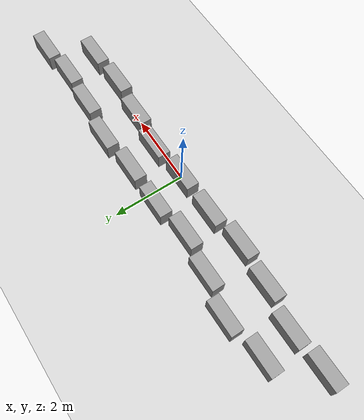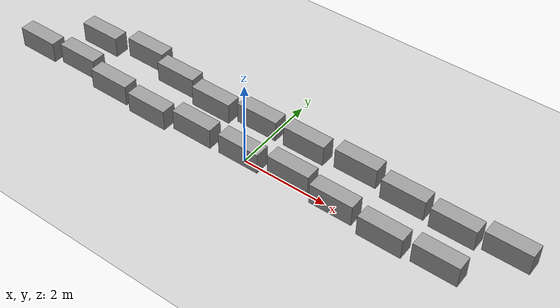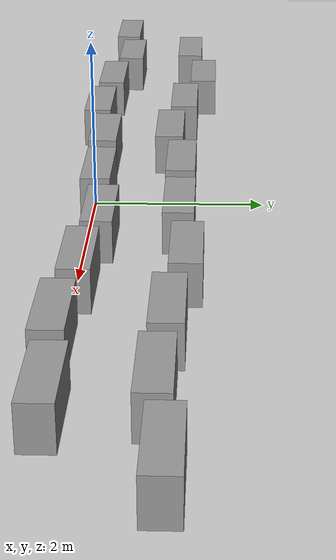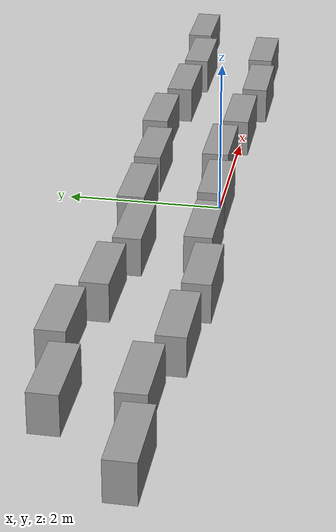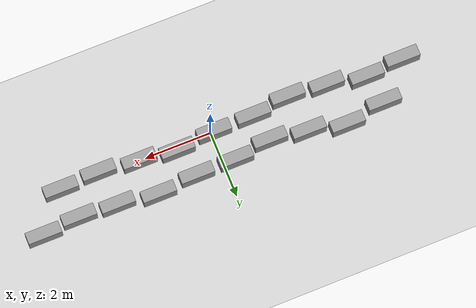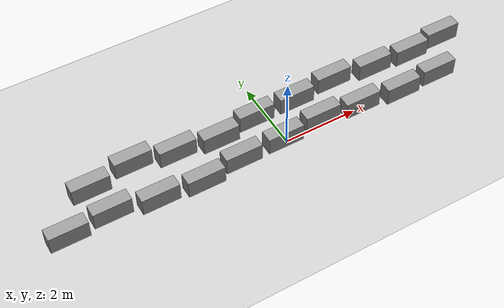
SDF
<sdf version="1.7">
 <world name="default">
  <light name="sun" type="directional">
   <pose>0 0 10 0 -0 0</pose>
   <diffuse>0.8 0.8 0.8 1</diffuse>
   <specular>0.2 0.2 0.2 1</specular>
   <attenuation>
    <range>1000</range>
    <constant>0.9</constant>
    <linear>0.01</linear>
    <quadratic>0.001</quadratic>
   </attenuation>
   <direction>-0.5 0.1 -0.9</direction>
   <spot><inner_angle>0</inner_angle><outer_angle>0</outer_angle><falloff>0</falloff></spot>
  </light>
  <gravity>0 0 -9.8</gravity>
  <magnetic_field>6e-06 2.3e-05 -4.2e-05</magnetic_field>
  <atmosphere type="adiabatic"/>
  <physics type="ode">
   <max_step_size>0.001</max_step_size>
   <real_time_factor>1</real_time_factor>
   <real_time_update_rate>1000</real_time_update_rate>
  </physics>
  <scene><ambient>0.4 0.4 0.4 1</ambient><background>0.7 0.7 0.7 1</background><shadows>1</shadows></scene>
  <spherical_coordinates>
   <surface_model>EARTH_WGS84</surface_model>
   <latitude_deg>0</latitude_deg>
   <longitude_deg>0</longitude_deg>
   <elevation>0</elevation>
   <heading_deg>0</heading_deg>
  </spherical_coordinates>
  <plugin name="collision_map_creator" filename="libcollision_map_creator.so"/>
  <model name="ground_plane">
   <static>1</static>
   <link name="link">
    <collision name="collision">
     <geometry><plane><normal>0 0 1</normal><size>100 100</size></plane></geometry>
     <surface>
      <contact><collide_bitmask>65535</collide_bitmask></contact>
      <friction><ode><mu>100</mu><mu2>50</mu2></ode></friction>
     </surface>
    </collision>
    <visual name="visual">
     <cast_shadows>0</cast_shadows>
     <geometry><plane><normal>0 0 1</normal><size>100 100</size></plane></geometry>
     <material>
      <script><uri>file://media/materials/scripts/gazebo.material</uri><name>Gazebo/Grey</name></script>
     </material>
    </visual>
   </link>
  </model>
  <model name="obs_solarpanel">
   <link name="link_0">
    <inertial>
     <mass>1</mass>
     <inertia>
      <ixx>0.166667</ixx>
      <ixy>0</ixy>
      <ixz>0</ixz>
      <iyy>0.166667</iyy>
      <iyz>0</iyz>
      <izz>0.166667</izz>
     </inertia>
    </inertial>
    <visual name="visual">
     <geometry><box><size>1 0.35 0.5</size></box></geometry>
     <material>
      <lighting>1</lighting>
      <script><uri>file://media/materials/scripts/gazebo.material</uri><name>Gazebo/Grey</name></script>
      <shader type="pixel"><normal_map>__default__</normal_map></shader>
      <ambient>0.3 0.3 0.3 1</ambient>
      <diffuse>0.7 0.7 0.7 1</diffuse>
      <specular>0.01 0.01 0.01 1</specular>
      <emissive>0 0 0 1</emissive>
     </material>
    </visual>
    <collision name="collision">
     <geometry><box><size>1 0.32 0.5</size></box></geometry>
     <surface>
      <friction>
       <ode><mu>10</mu><mu2>10</mu2><fdir1>0 0 0</fdir1><slip1>0</slip1><slip2>0</slip2></ode>
       <torsional>
        <coefficient>1</coefficient>
        <patch_radius>0</patch_radius>
        <surface_radius>0</surface_radius>
        <use_patch_radius>1</use_patch_radius>
        <ode><slip>0</slip></ode>
       </torsional>
      </friction>
      <bounce><restitution_coefficient>0</restitution_coefficient><threshold>1e+06</threshold></bounce>
      <contact>
       <collide_without_contact>0</collide_without_contact>
       <collide_without_contact_bitmask>1</collide_without_contact_bitmask>
       <collide_bitmask>1</collide_bitmask>
       <ode>
        <soft_cfm>0</soft_cfm>
        <soft_erp>0.2</soft_erp>
        <kp>1e+13</kp>
        <kd>1</kd>
        <max_vel>0</max_vel>
        <min_depth>0</min_depth>
       </ode>
       <bullet>
        <split_impulse>1</split_impulse>
        <split_impulse_penetration_threshold>-0.01</split_impulse_penetration_threshold>
        <soft_cfm>0</soft_cfm>
        <soft_erp>0.2</soft_erp>
        <kp>1e+13</kp>
        <kd>1</kd>
       </bullet>
      </contact>
     </surface>
    </collision>
   </link>
   <static>1</static>
   <pose>-5.86942 0.0406 0.25 0 -0 0</pose>
  </model>
  <model name="obs_solarpanel_0">
   <link name="link_0">
    <inertial>
     <mass>1</mass>
     <inertia>
      <ixx>0.166667</ixx>
      <ixy>0</ixy>
      <ixz>0</ixz>
      <iyy>0.166667</iyy>
      <iyz>0</iyz>
      <izz>0.166667</izz>
     </inertia>
    </inertial>
    <visual name="visual">
     <geometry><box><size>1 0.35 0.5</size></box></geometry>
     <material>
      <lighting>1</lighting>
      <script><uri>file://media/materials/scripts/gazebo.material</uri><name>Gazebo/Grey</name></script>
      <shader type="pixel"><normal_map>__default__</normal_map></shader>
      <ambient>0.3 0.3 0.3 1</ambient>
      <diffuse>0.7 0.7 0.7 1</diffuse>
      <specular>0.01 0.01 0.01 1</specular>
      <emissive>0 0 0 1</emissive>
     </material>
    </visual>
    <collision name="collision">
     <geometry><box><size>1 0.32 0.5</size></box></geometry>
     <surface>
      <friction>
       <ode><mu>10</mu><mu2>10</mu2><fdir1>0 0 0</fdir1><slip1>0</slip1><slip2>0</slip2></ode>
       <torsional>
        <coefficient>1</coefficient>
        <patch_radius>0</patch_radius>
        <surface_radius>0</surface_radius>
        <use_patch_radius>1</use_patch_radius>
        <ode><slip>0</slip></ode>
       </torsional>
      </friction>
      <bounce><restitution_coefficient>0</restitution_coefficient><threshold>1e+06</threshold></bounce>
      <contact>
       <collide_without_contact>0</collide_without_contact>
       <collide_without_contact_bitmask>1</collide_without_contact_bitmask>
       <collide_bitmask>1</collide_bitmask>
       <ode>
        <soft_cfm>0</soft_cfm>
        <soft_erp>0.2</soft_erp>
        <kp>1e+13</kp>
        <kd>1</kd>
        <max_vel>0</max_vel>
        <min_depth>0</min_depth>
       </ode>
       <bullet>
        <split_impulse>1</split_impulse>
        <split_impulse_penetration_threshold>-0.01</split_impulse_penetration_threshold>
        <soft_cfm>0</soft_cfm>
        <soft_erp>0.2</soft_erp>
        <kp>1e+13</kp>
        <kd>1</kd>
       </bullet>
      </contact>
     </surface>
    </collision>
   </link>
   <static>1</static>
   <pose>-4.72609 0.153758 0.25 0 -0 0</pose>
  </model>
  <model name="obs_solarpanel_1">
   <link name="link_0">
    <inertial>
     <mass>1</mass>
     <inertia>
      <ixx>0.166667</ixx>
      <ixy>0</ixy>
      <ixz>0</ixz>
      <iyy>0.166667</iyy>
      <iyz>0</iyz>
      <izz>0.166667</izz>
     </inertia>
    </inertial>
    <visual name="visual">
     <geometry><box><size>1 0.35 0.5</size></box></geometry>
     <material>
      <lighting>1</lighting>
      <script><uri>file://media/materials/scripts/gazebo.material</uri><name>Gazebo/Grey</name></script>
      <shader type="pixel"><normal_map>__default__</normal_map></shader>
      <ambient>0.3 0.3 0.3 1</ambient>
      <diffuse>0.7 0.7 0.7 1</diffuse>
      <specular>0.01 0.01 0.01 1</specular>
      <emissive>0 0 0 1</emissive>
     </material>
    </visual>
    <collision name="collision">
     <geometry><box><size>1 0.32 0.5</size></box></geometry>
     <surface>
      <friction>
       <ode><mu>10</mu><mu2>10</mu2><fdir1>0 0 0</fdir1><slip1>0</slip1><slip2>0</slip2></ode>
       <torsional>
        <coefficient>1</coefficient>
        <patch_radius>0</patch_radius>
        <surface_radius>0</surface_radius>
        <use_patch_radius>1</use_patch_radius>
        <ode><slip>0</slip></ode>
       </torsional>
      </friction>
      <bounce><restitution_coefficient>0</restitution_coefficient><threshold>1e+06</threshold></bounce>
      <contact>
       <collide_without_contact>0</collide_without_contact>
       <collide_without_contact_bitmask>1</collide_without_contact_bitmask>
       <collide_bitmask>1</collide_bitmask>
       <ode>
        <soft_cfm>0</soft_cfm>
        <soft_erp>0.2</soft_erp>
        <kp>1e+13</kp>
        <kd>1</kd>
        <max_vel>0</max_vel>
        <min_depth>0</min_depth>
       </ode>
       <bullet>
        <split_impulse>1</split_impulse>
        <split_impulse_penetration_threshold>-0.01</split_impulse_penetration_threshold>
        <soft_cfm>0</soft_cfm>
        <soft_erp>0.2</soft_erp>
        <kp>1e+13</kp>
        <kd>1</kd>
       </bullet>
      </contact>
     </surface>
    </collision>
   </link>
   <static>1</static>
   <pose>-3.57633 -0.052591 0.25 0 -0 0</pose>
  </model>
  <model name="obs_solarpanel_clone">
   <link name="link_0">
    <inertial>
     <mass>1</mass>
     <inertia>
      <ixx>0.166667</ixx>
      <ixy>0</ixy>
      <ixz>0</ixz>
      <iyy>0.166667</iyy>
      <iyz>0</iyz>
      <izz>0.166667</izz>
     </inertia>
    </inertial>
    <visual name="visual">
     <geometry><box><size>1 0.35 0.5</size></box></geometry>
     <material>
      <lighting>1</lighting>
      <script><uri>file://media/materials/scripts/gazebo.material</uri><name>Gazebo/Grey</name></script>
      <shader type="pixel"><normal_map>__default__</normal_map></shader>
      <ambient>0.3 0.3 0.3 1</ambient>
      <diffuse>0.7 0.7 0.7 1</diffuse>
      <specular>0.01 0.01 0.01 1</specular>
      <emissive>0 0 0 1</emissive>
     </material>
    </visual>
    <collision name="collision">
     <geometry><box><size>1 0.32 0.5</size></box></geometry>
     <surface>
      <friction>
       <ode><mu>10</mu><mu2>10</mu2><fdir1>0 0 0</fdir1><slip1>0</slip1><slip2>0</slip2></ode>
       <torsional>
        <coefficient>1</coefficient>
        <patch_radius>0</patch_radius>
        <surface_radius>0</surface_radius>
        <use_patch_radius>1</use_patch_radius>
        <ode><slip>0</slip></ode>
       </torsional>
      </friction>
      <bounce><restitution_coefficient>0</restitution_coefficient><threshold>1e+06</threshold></bounce>
      <contact>
       <collide_without_contact>0</collide_without_contact>
       <collide_without_contact_bitmask>1</collide_without_contact_bitmask>
       <collide_bitmask>1</collide_bitmask>
       <ode>
        <soft_cfm>0</soft_cfm>
        <soft_erp>0.2</soft_erp>
        <kp>1e+13</kp>
        <kd>1</kd>
        <max_vel>0</max_vel>
        <min_depth>0</min_depth>
       </ode>
       <bullet>
        <split_impulse>1</split_impulse>
        <split_impulse_penetration_threshold>-0.01</split_impulse_penetration_threshold>
        <soft_cfm>0</soft_cfm>
        <soft_erp>0.2</soft_erp>
        <kp>1e+13</kp>
        <kd>1</kd>
       </bullet>
      </contact>
     </surface>
    </collision>
   </link>
   <static>1</static>
   <pose>-0.080067 0.03846 0.25 0 -0 0</pose>
  </model>
  <model name="obs_solarpanel_clone_0">
   <link name="link_0">
    <inertial>
     <mass>1</mass>
     <inertia>
      <ixx>0.166667</ixx>
      <ixy>0</ixy>
      <ixz>0</ixz>
      <iyy>0.166667</iyy>
      <iyz>0</iyz>
      <izz>0.166667</izz>
     </inertia>
    </inertial>
    <visual name="visual">
     <geometry><box><size>1 0.35 0.5</size></box></geometry>
     <material>
      <lighting>1</lighting>
      <script><uri>file://media/materials/scripts/gazebo.material</uri><name>Gazebo/Grey</name></script>
      <shader type="pixel"><normal_map>__default__</normal_map></shader>
      <ambient>0.3 0.3 0.3 1</ambient>
      <diffuse>0.7 0.7 0.7 1</diffuse>
      <specular>0.01 0.01 0.01 1</specular>
      <emissive>0 0 0 1</emissive>
     </material>
    </visual>
    <collision name="collision">
     <geometry><box><size>1 0.32 0.5</size></box></geometry>
     <surface>
      <friction>
       <ode><mu>10</mu><mu2>10</mu2><fdir1>0 0 0</fdir1><slip1>0</slip1><slip2>0</slip2></ode>
       <torsional>
        <coefficient>1</coefficient>
        <patch_radius>0</patch_radius>
        <surface_radius>0</surface_radius>
        <use_patch_radius>1</use_patch_radius>
        <ode><slip>0</slip></ode>
       </torsional>
      </friction>
      <bounce><restitution_coefficient>0</restitution_coefficient><threshold>1e+06</threshold></bounce>
      <contact>
       <collide_without_contact>0</collide_without_contact>
       <collide_without_contact_bitmask>1</collide_without_contact_bitmask>
       <collide_bitmask>1</collide_bitmask>
       <ode>
        <soft_cfm>0</soft_cfm>
        <soft_erp>0.2</soft_erp>
        <kp>1e+13</kp>
        <kd>1</kd>
        <max_vel>0</max_vel>
        <min_depth>0</min_depth>
       </ode>
       <bullet>
        <split_impulse>1</split_impulse>
        <split_impulse_penetration_threshold>-0.01</split_impulse_penetration_threshold>
        <soft_cfm>0</soft_cfm>
        <soft_erp>0.2</soft_erp>
        <kp>1e+13</kp>
        <kd>1</kd>
       </bullet>
      </contact>
     </surface>
    </collision>
   </link>
   <static>1</static>
   <pose>-2.40784 -0.143273 0.25 0 -0 0</pose>
  </model>
  <model name="obs_solarpanel_clone_1">
   <link name="link_0">
    <inertial>
     <mass>1</mass>
     <inertia>
      <ixx>0.166667</ixx>
      <ixy>0</ixy>
      <ixz>0</ixz>
      <iyy>0.166667</iyy>
      <iyz>0</iyz>
      <izz>0.166667</izz>
     </inertia>
    </inertial>
    <visual name="visual">
     <geometry><box><size>1 0.35 0.5</size></box></geometry>
     <material>
      <lighting>1</lighting>
      <script><uri>file://media/materials/scripts/gazebo.material</uri><name>Gazebo/Grey</name></script>
      <shader type="pixel"><normal_map>__default__</normal_map></shader>
      <ambient>0.3 0.3 0.3 1</ambient>
      <diffuse>0.7 0.7 0.7 1</diffuse>
      <specular>0.01 0.01 0.01 1</specular>
      <emissive>0 0 0 1</emissive>
     </material>
    </visual>
    <collision name="collision">
     <geometry><box><size>1 0.32 0.5</size></box></geometry>
     <surface>
      <friction>
       <ode><mu>10</mu><mu2>10</mu2><fdir1>0 0 0</fdir1><slip1>0</slip1><slip2>0</slip2></ode>
       <torsional>
        <coefficient>1</coefficient>
        <patch_radius>0</patch_radius>
        <surface_radius>0</surface_radius>
        <use_patch_radius>1</use_patch_radius>
        <ode><slip>0</slip></ode>
       </torsional>
      </friction>
      <bounce><restitution_coefficient>0</restitution_coefficient><threshold>1e+06</threshold></bounce>
      <contact>
       <collide_without_contact>0</collide_without_contact>
       <collide_without_contact_bitmask>1</collide_without_contact_bitmask>
       <collide_bitmask>1</collide_bitmask>
       <ode>
        <soft_cfm>0</soft_cfm>
        <soft_erp>0.2</soft_erp>
        <kp>1e+13</kp>
        <kd>1</kd>
        <max_vel>0</max_vel>
        <min_depth>0</min_depth>
       </ode>
       <bullet>
        <split_impulse>1</split_impulse>
        <split_impulse_penetration_threshold>-0.01</split_impulse_penetration_threshold>
        <soft_cfm>0</soft_cfm>
        <soft_erp>0.2</soft_erp>
        <kp>1e+13</kp>
        <kd>1</kd>
       </bullet>
      </contact>
     </surface>
    </collision>
   </link>
   <static>1</static>
   <pose>-1.28695 0.015078 0.25 0 -0 0</pose>
  </model>
  <model name="obs_solarpanel_clone_2">
   <link name="link_0">
    <inertial>
     <mass>1</mass>
     <inertia>
      <ixx>0.166667</ixx>
      <ixy>0</ixy>
      <ixz>0</ixz>
      <iyy>0.166667</iyy>
      <iyz>0</iyz>
      <izz>0.166667</izz>
     </inertia>
    </inertial>
    <visual name="visual">
     <geometry><box><size>1 0.35 0.5</size></box></geometry>
     <material>
      <lighting>1</lighting>
      <script><uri>file://media/materials/scripts/gazebo.material</uri><name>Gazebo/Grey</name></script>
      <shader type="pixel"><normal_map>__default__</normal_map></shader>
      <ambient>0.3 0.3 0.3 1</ambient>
      <diffuse>0.7 0.7 0.7 1</diffuse>
      <specular>0.01 0.01 0.01 1</specular>
      <emissive>0 0 0 1</emissive>
     </material>
    </visual>
    <collision name="collision">
     <geometry><box><size>1 0.32 0.5</size></box></geometry>
     <surface>
      <friction>
       <ode><mu>10</mu><mu2>10</mu2><fdir1>0 0 0</fdir1><slip1>0</slip1><slip2>0</slip2></ode>
       <torsional>
        <coefficient>1</coefficient>
        <patch_radius>0</patch_radius>
        <surface_radius>0</surface_radius>
        <use_patch_radius>1</use_patch_radius>
        <ode><slip>0</slip></ode>
       </torsional>
      </friction>
      <bounce><restitution_coefficient>0</restitution_coefficient><threshold>1e+06</threshold></bounce>
      <contact>
       <collide_without_contact>0</collide_without_contact>
       <collide_without_contact_bitmask>1</collide_without_contact_bitmask>
       <collide_bitmask>1</collide_bitmask>
       <ode>
        <soft_cfm>0</soft_cfm>
        <soft_erp>0.2</soft_erp>
        <kp>1e+13</kp>
        <kd>1</kd>
        <max_vel>0</max_vel>
        <min_depth>0</min_depth>
       </ode>
       <bullet>
        <split_impulse>1</split_impulse>
        <split_impulse_penetration_threshold>-0.01</split_impulse_penetration_threshold>
        <soft_cfm>0</soft_cfm>
        <soft_erp>0.2</soft_erp>
        <kp>1e+13</kp>
        <kd>1</kd>
       </bullet>
      </contact>
     </surface>
    </collision>
   </link>
   <static>1</static>
   <pose>1.08486 0.15745 0.25 0 -0 0</pose>
  </model>
  <model name="obs_solarpanel_clone_3">
   <link name="link_0">
    <inertial>
     <mass>1</mass>
     <inertia>
      <ixx>0.166667</ixx>
      <ixy>0</ixy>
      <ixz>0</ixz>
      <iyy>0.166667</iyy>
      <iyz>0</iyz>
      <izz>0.166667</izz>
     </inertia>
    </inertial>
    <visual name="visual">
     <geometry><box><size>1 0.35 0.5</size></box></geometry>
     <material>
      <lighting>1</lighting>
      <script><uri>file://media/materials/scripts/gazebo.material</uri><name>Gazebo/Grey</name></script>
      <shader type="pixel"><normal_map>__default__</normal_map></shader>
      <ambient>0.3 0.3 0.3 1</ambient>
      <diffuse>0.7 0.7 0.7 1</diffuse>
      <specular>0.01 0.01 0.01 1</specular>
      <emissive>0 0 0 1</emissive>
     </material>
    </visual>
    <collision name="collision">
     <geometry><box><size>1 0.32 0.5</size></box></geometry>
     <surface>
      <friction>
       <ode><mu>10</mu><mu2>10</mu2><fdir1>0 0 0</fdir1><slip1>0</slip1><slip2>0</slip2></ode>
       <torsional>
        <coefficient>1</coefficient>
        <patch_radius>0</patch_radius>
        <surface_radius>0</surface_radius>
        <use_patch_radius>1</use_patch_radius>
        <ode><slip>0</slip></ode>
       </torsional>
      </friction>
      <bounce><restitution_coefficient>0</restitution_coefficient><threshold>1e+06</threshold></bounce>
      <contact>
       <collide_without_contact>0</collide_without_contact>
       <collide_without_contact_bitmask>1</collide_without_contact_bitmask>
       <collide_bitmask>1</collide_bitmask>
       <ode>
        <soft_cfm>0</soft_cfm>
        <soft_erp>0.2</soft_erp>
        <kp>1e+13</kp>
        <kd>1</kd>
        <max_vel>0</max_vel>
        <min_depth>0</min_depth>
       </ode>
       <bullet>
        <split_impulse>1</split_impulse>
        <split_impulse_penetration_threshold>-0.01</split_impulse_penetration_threshold>
        <soft_cfm>0</soft_cfm>
        <soft_erp>0.2</soft_erp>
        <kp>1e+13</kp>
        <kd>1</kd>
       </bullet>
      </contact>
     </surface>
    </collision>
   </link>
   <static>1</static>
   <pose>2.20167 0.032931 0.25 0 -0 0</pose>
  </model>
  <model name="obs_solarpanel_clone_4">
   <link name="link_0">
    <inertial>
     <mass>1</mass>
     <inertia>
      <ixx>0.166667</ixx>
      <ixy>0</ixy>
      <ixz>0</ixz>
      <iyy>0.166667</iyy>
      <iyz>0</iyz>
      <izz>0.166667</izz>
     </inertia>
    </inertial>
    <visual name="visual">
     <geometry><box><size>1 0.35 0.5</size></box></geometry>
     <material>
      <lighting>1</lighting>
      <script><uri>file://media/materials/scripts/gazebo.material</uri><name>Gazebo/Grey</name></script>
      <shader type="pixel"><normal_map>__default__</normal_map></shader>
      <ambient>0.3 0.3 0.3 1</ambient>
      <diffuse>0.7 0.7 0.7 1</diffuse>
      <specular>0.01 0.01 0.01 1</specular>
      <emissive>0 0 0 1</emissive>
     </material>
    </visual>
    <collision name="collision">
     <geometry><box><size>1 0.32 0.5</size></box></geometry>
     <surface>
      <friction>
       <ode><mu>10</mu><mu2>10</mu2><fdir1>0 0 0</fdir1><slip1>0</slip1><slip2>0</slip2></ode>
       <torsional>
        <coefficient>1</coefficient>
        <patch_radius>0</patch_radius>
        <surface_radius>0</surface_radius>
        <use_patch_radius>1</use_patch_radius>
        <ode><slip>0</slip></ode>
       </torsional>
      </friction>
      <bounce><restitution_coefficient>0</restitution_coefficient><threshold>1e+06</threshold></bounce>
      <contact>
       <collide_without_contact>0</collide_without_contact>
       <collide_without_contact_bitmask>1</collide_without_contact_bitmask>
       <collide_bitmask>1</collide_bitmask>
       <ode>
        <soft_cfm>0</soft_cfm>
        <soft_erp>0.2</soft_erp>
        <kp>1e+13</kp>
        <kd>1</kd>
        <max_vel>0</max_vel>
        <min_depth>0</min_depth>
       </ode>
       <bullet>
        <split_impulse>1</split_impulse>
        <split_impulse_penetration_threshold>-0.01</split_impulse_penetration_threshold>
        <soft_cfm>0</soft_cfm>
        <soft_erp>0.2</soft_erp>
        <kp>1e+13</kp>
        <kd>1</kd>
       </bullet>
      </contact>
     </surface>
    </collision>
   </link>
   <static>1</static>
   <pose>3.38897 -0.082973 0.25 0 -0 0</pose>
  </model>
  <model name="obs_solarpanel_clone_4_clone">
   <link name="link_0">
    <inertial>
     <mass>1</mass>
     <inertia>
      <ixx>0.166667</ixx>
      <ixy>0</ixy>
      <ixz>0</ixz>
      <iyy>0.166667</iyy>
      <iyz>0</iyz>
      <izz>0.166667</izz>
     </inertia>
    </inertial>
    <visual name="visual">
     <geometry><box><size>1 0.35 0.5</size></box></geometry>
     <material>
      <lighting>1</lighting>
      <script><uri>file://media/materials/scripts/gazebo.material</uri><name>Gazebo/Grey</name></script>
      <shader type="pixel"><normal_map>__default__</normal_map></shader>
      <ambient>0.3 0.3 0.3 1</ambient>
      <diffuse>0.7 0.7 0.7 1</diffuse>
      <specular>0.01 0.01 0.01 1</specular>
      <emissive>0 0 0 1</emissive>
     </material>
    </visual>
    <collision name="collision">
     <geometry><box><size>1 0.32 0.5</size></box></geometry>
     <surface>
      <friction>
       <ode><mu>10</mu><mu2>10</mu2><fdir1>0 0 0</fdir1><slip1>0</slip1><slip2>0</slip2></ode>
       <torsional>
        <coefficient>1</coefficient>
        <patch_radius>0</patch_radius>
        <surface_radius>0</surface_radius>
        <use_patch_radius>1</use_patch_radius>
        <ode><slip>0</slip></ode>
       </torsional>
      </friction>
      <bounce><restitution_coefficient>0</restitution_coefficient><threshold>1e+06</threshold></bounce>
      <contact>
       <collide_without_contact>0</collide_without_contact>
       <collide_without_contact_bitmask>1</collide_without_contact_bitmask>
       <collide_bitmask>1</collide_bitmask>
       <ode>
        <soft_cfm>0</soft_cfm>
        <soft_erp>0.2</soft_erp>
        <kp>1e+13</kp>
        <kd>1</kd>
        <max_vel>0</max_vel>
        <min_depth>0</min_depth>
       </ode>
       <bullet>
        <split_impulse>1</split_impulse>
        <split_impulse_penetration_threshold>-0.01</split_impulse_penetration_threshold>
        <soft_cfm>0</soft_cfm>
        <soft_erp>0.2</soft_erp>
        <kp>1e+13</kp>
        <kd>1</kd>
       </bullet>
      </contact>
     </surface>
    </collision>
   </link>
   <static>1</static>
   <pose>4.5562 -0.021069 0.25 0 -0 0</pose>
  </model>
  <model name="obs_solarpanel_clone_5">
   <link name="link_0">
    <inertial>
     <mass>1</mass>
     <inertia>
      <ixx>0.166667</ixx>
      <ixy>0</ixy>
      <ixz>0</ixz>
      <iyy>0.166667</iyy>
      <iyz>0</iyz>
      <izz>0.166667</izz>
     </inertia>
    </inertial>
    <visual name="visual">
     <geometry><box><size>1 0.35 0.5</size></box></geometry>
     <material>
      <lighting>1</lighting>
      <script><uri>file://media/materials/scripts/gazebo.material</uri><name>Gazebo/Grey</name></script>
      <shader type="pixel"><normal_map>__default__</normal_map></shader>
      <ambient>0.3 0.3 0.3 1</ambient>
      <diffuse>0.7 0.7 0.7 1</diffuse>
      <specular>0.01 0.01 0.01 1</specular>
      <emissive>0 0 0 1</emissive>
     </material>
    </visual>
    <collision name="collision">
     <geometry><box><size>1 0.32 0.5</size></box></geometry>
     <surface>
      <friction>
       <ode><mu>10</mu><mu2>10</mu2><fdir1>0 0 0</fdir1><slip1>0</slip1><slip2>0</slip2></ode>
       <torsional>
        <coefficient>1</coefficient>
        <patch_radius>0</patch_radius>
        <surface_radius>0</surface_radius>
        <use_patch_radius>1</use_patch_radius>
        <ode><slip>0</slip></ode>
       </torsional>
      </friction>
      <bounce><restitution_coefficient>0</restitution_coefficient><threshold>1e+06</threshold></bounce>
      <contact>
       <collide_without_contact>0</collide_without_contact>
       <collide_without_contact_bitmask>1</collide_without_contact_bitmask>
       <collide_bitmask>1</collide_bitmask>
       <ode>
        <soft_cfm>0</soft_cfm>
        <soft_erp>0.2</soft_erp>
        <kp>1e+13</kp>
        <kd>1</kd>
        <max_vel>0</max_vel>
        <min_depth>0</min_depth>
       </ode>
       <bullet>
        <split_impulse>1</split_impulse>
        <split_impulse_penetration_threshold>-0.01</split_impulse_penetration_threshold>
        <soft_cfm>0</soft_cfm>
        <soft_erp>0.2</soft_erp>
        <kp>1e+13</kp>
        <kd>1</kd>
       </bullet>
      </contact>
     </surface>
    </collision>
   </link>
   <static>1</static>
   <pose>-4.88323 1.03546 0.25 0 -0 0</pose>
  </model>
  <model name="obs_solarpanel_clone_6">
   <link name="link_0">
    <inertial>
     <mass>1</mass>
     <inertia>
      <ixx>0.166667</ixx>
      <ixy>0</ixy>
      <ixz>0</ixz>
      <iyy>0.166667</iyy>
      <iyz>0</iyz>
      <izz>0.166667</izz>
     </inertia>
    </inertial>
    <visual name="visual">
     <geometry><box><size>1 0.35 0.5</size></box></geometry>
     <material>
      <lighting>1</lighting>
      <script><uri>file://media/materials/scripts/gazebo.material</uri><name>Gazebo/Grey</name></script>
      <shader type="pixel"><normal_map>__default__</normal_map></shader>
      <ambient>0.3 0.3 0.3 1</ambient>
      <diffuse>0.7 0.7 0.7 1</diffuse>
      <specular>0.01 0.01 0.01 1</specular>
      <emissive>0 0 0 1</emissive>
     </material>
    </visual>
    <collision name="collision">
     <geometry><box><size>1 0.32 0.5</size></box></geometry>
     <surface>
      <friction>
       <ode><mu>10</mu><mu2>10</mu2><fdir1>0 0 0</fdir1><slip1>0</slip1><slip2>0</slip2></ode>
       <torsional>
        <coefficient>1</coefficient>
        <patch_radius>0</patch_radius>
        <surface_radius>0</surface_radius>
        <use_patch_radius>1</use_patch_radius>
        <ode><slip>0</slip></ode>
       </torsional>
      </friction>
      <bounce><restitution_coefficient>0</restitution_coefficient><threshold>1e+06</threshold></bounce>
      <contact>
       <collide_without_contact>0</collide_without_contact>
       <collide_without_contact_bitmask>1</collide_without_contact_bitmask>
       <collide_bitmask>1</collide_bitmask>
       <ode>
        <soft_cfm>0</soft_cfm>
        <soft_erp>0.2</soft_erp>
        <kp>1e+13</kp>
        <kd>1</kd>
        <max_vel>0</max_vel>
        <min_depth>0</min_depth>
       </ode>
       <bullet>
        <split_impulse>1</split_impulse>
        <split_impulse_penetration_threshold>-0.01</split_impulse_penetration_threshold>
        <soft_cfm>0</soft_cfm>
        <soft_erp>0.2</soft_erp>
        <kp>1e+13</kp>
        <kd>1</kd>
       </bullet>
      </contact>
     </surface>
    </collision>
   </link>
   <static>1</static>
   <pose>-3.67937 1.24965 0.25 0 -0 0</pose>
  </model>
  <model name="obs_solarpanel_clone_7">
   <link name="link_0">
    <inertial>
     <mass>1</mass>
     <inertia>
      <ixx>0.166667</ixx>
      <ixy>0</ixy>
      <ixz>0</ixz>
      <iyy>0.166667</iyy>
      <iyz>0</iyz>
      <izz>0.166667</izz>
     </inertia>
    </inertial>
    <visual name="visual">
     <geometry><box><size>1 0.35 0.5</size></box></geometry>
     <material>
      <lighting>1</lighting>
      <script><uri>file://media/materials/scripts/gazebo.material</uri><name>Gazebo/Grey</name></script>
      <shader type="pixel"><normal_map>__default__</normal_map></shader>
      <ambient>0.3 0.3 0.3 1</ambient>
      <diffuse>0.7 0.7 0.7 1</diffuse>
      <specular>0.01 0.01 0.01 1</specular>
      <emissive>0 0 0 1</emissive>
     </material>
    </visual>
    <collision name="collision">
     <geometry><box><size>1 0.32 0.5</size></box></geometry>
     <surface>
      <friction>
       <ode><mu>10</mu><mu2>10</mu2><fdir1>0 0 0</fdir1><slip1>0</slip1><slip2>0</slip2></ode>
       <torsional>
        <coefficient>1</coefficient>
        <patch_radius>0</patch_radius>
        <surface_radius>0</surface_radius>
        <use_patch_radius>1</use_patch_radius>
        <ode><slip>0</slip></ode>
       </torsional>
      </friction>
      <bounce><restitution_coefficient>0</restitution_coefficient><threshold>1e+06</threshold></bounce>
      <contact>
       <collide_without_contact>0</collide_without_contact>
       <collide_without_contact_bitmask>1</collide_without_contact_bitmask>
       <collide_bitmask>1</collide_bitmask>
       <ode>
        <soft_cfm>0</soft_cfm>
        <soft_erp>0.2</soft_erp>
        <kp>1e+13</kp>
        <kd>1</kd>
        <max_vel>0</max_vel>
        <min_depth>0</min_depth>
       </ode>
       <bullet>
        <split_impulse>1</split_impulse>
        <split_impulse_penetration_threshold>-0.01</split_impulse_penetration_threshold>
        <soft_cfm>0</soft_cfm>
        <soft_erp>0.2</soft_erp>
        <kp>1e+13</kp>
        <kd>1</kd>
       </bullet>
      </contact>
     </surface>
    </collision>
   </link>
   <static>1</static>
   <pose>-2.58542 1.00579 0.25 0 -0 0</pose>
  </model>
  <model name="obs_solarpanel_clone_8">
   <link name="link_0">
    <inertial>
     <mass>1</mass>
     <inertia>
      <ixx>0.166667</ixx>
      <ixy>0</ixy>
      <ixz>0</ixz>
      <iyy>0.166667</iyy>
      <iyz>0</iyz>
      <izz>0.166667</izz>
     </inertia>
    </inertial>
    <visual name="visual">
     <geometry><box><size>1 0.35 0.5</size></box></geometry>
     <material>
      <lighting>1</lighting>
      <script><uri>file://media/materials/scripts/gazebo.material</uri><name>Gazebo/Grey</name></script>
      <shader type="pixel"><normal_map>__default__</normal_map></shader>
      <ambient>0.3 0.3 0.3 1</ambient>
      <diffuse>0.7 0.7 0.7 1</diffuse>
      <specular>0.01 0.01 0.01 1</specular>
      <emissive>0 0 0 1</emissive>
     </material>
    </visual>
    <collision name="collision">
     <geometry><box><size>1 0.32 0.5</size></box></geometry>
     <surface>
      <friction>
       <ode><mu>10</mu><mu2>10</mu2><fdir1>0 0 0</fdir1><slip1>0</slip1><slip2>0</slip2></ode>
       <torsional>
        <coefficient>1</coefficient>
        <patch_radius>0</patch_radius>
        <surface_radius>0</surface_radius>
        <use_patch_radius>1</use_patch_radius>
        <ode><slip>0</slip></ode>
       </torsional>
      </friction>
      <bounce><restitution_coefficient>0</restitution_coefficient><threshold>1e+06</threshold></bounce>
      <contact>
       <collide_without_contact>0</collide_without_contact>
       <collide_without_contact_bitmask>1</collide_without_contact_bitmask>
       <collide_bitmask>1</collide_bitmask>
       <ode>
        <soft_cfm>0</soft_cfm>
        <soft_erp>0.2</soft_erp>
        <kp>1e+13</kp>
        <kd>1</kd>
        <max_vel>0</max_vel>
        <min_depth>0</min_depth>
       </ode>
       <bullet>
        <split_impulse>1</split_impulse>
        <split_impulse_penetration_threshold>-0.01</split_impulse_penetration_threshold>
        <soft_cfm>0</soft_cfm>
        <soft_erp>0.2</soft_erp>
        <kp>1e+13</kp>
        <kd>1</kd>
       </bullet>
      </contact>
     </surface>
    </collision>
   </link>
   <static>1</static>
   <pose>-1.46105 0.84882 0.25 0 -0 0</pose>
  </model>
  <model name="obs_solarpanel_clone_9">
   <link name="link_0">
    <inertial>
     <mass>1</mass>
     <inertia>
      <ixx>0.166667</ixx>
      <ixy>0</ixy>
      <ixz>0</ixz>
      <iyy>0.166667</iyy>
      <iyz>0</iyz>
      <izz>0.166667</izz>
     </inertia>
    </inertial>
    <visual name="visual">
     <geometry><box><size>1 0.35 0.5</size></box></geometry>
     <material>
      <lighting>1</lighting>
      <script><uri>file://media/materials/scripts/gazebo.material</uri><name>Gazebo/Grey</name></script>
      <shader type="pixel"><normal_map>__default__</normal_map></shader>
      <ambient>0.3 0.3 0.3 1</ambient>
      <diffuse>0.7 0.7 0.7 1</diffuse>
      <specular>0.01 0.01 0.01 1</specular>
      <emissive>0 0 0 1</emissive>
     </material>
    </visual>
    <collision name="collision">
     <geometry><box><size>1 0.32 0.5</size></box></geometry>
     <surface>
      <friction>
       <ode><mu>10</mu><mu2>10</mu2><fdir1>0 0 0</fdir1><slip1>0</slip1><slip2>0</slip2></ode>
       <torsional>
        <coefficient>1</coefficient>
        <patch_radius>0</patch_radius>
        <surface_radius>0</surface_radius>
        <use_patch_radius>1</use_patch_radius>
        <ode><slip>0</slip></ode>
       </torsional>
      </friction>
      <bounce><restitution_coefficient>0</restitution_coefficient><threshold>1e+06</threshold></bounce>
      <contact>
       <collide_without_contact>0</collide_without_contact>
       <collide_without_contact_bitmask>1</collide_without_contact_bitmask>
       <collide_bitmask>1</collide_bitmask>
       <ode>
        <soft_cfm>0</soft_cfm>
        <soft_erp>0.2</soft_erp>
        <kp>1e+13</kp>
        <kd>1</kd>
        <max_vel>0</max_vel>
        <min_depth>0</min_depth>
       </ode>
       <bullet>
        <split_impulse>1</split_impulse>
        <split_impulse_penetration_threshold>-0.01</split_impulse_penetration_threshold>
        <soft_cfm>0</soft_cfm>
        <soft_erp>0.2</soft_erp>
        <kp>1e+13</kp>
        <kd>1</kd>
       </bullet>
      </contact>
     </surface>
    </collision>
   </link>
   <static>1</static>
   <pose>-0.352976 1.02084 0.25 0 -0 0</pose>
  </model>
  <model name="obs_solarpanel_clone_10">
   <link name="link_0">
    <inertial>
     <mass>1</mass>
     <inertia>
      <ixx>0.166667</ixx>
      <ixy>0</ixy>
      <ixz>0</ixz>
      <iyy>0.166667</iyy>
      <iyz>0</iyz>
      <izz>0.166667</izz>
     </inertia>
    </inertial>
    <visual name="visual">
     <geometry><box><size>1 0.35 0.5</size></box></geometry>
     <material>
      <lighting>1</lighting>
      <script><uri>file://media/materials/scripts/gazebo.material</uri><name>Gazebo/Grey</name></script>
      <shader type="pixel"><normal_map>__default__</normal_map></shader>
      <ambient>0.3 0.3 0.3 1</ambient>
      <diffuse>0.7 0.7 0.7 1</diffuse>
      <specular>0.01 0.01 0.01 1</specular>
      <emissive>0 0 0 1</emissive>
     </material>
    </visual>
    <collision name="collision">
     <geometry><box><size>1 0.32 0.5</size></box></geometry>
     <surface>
      <friction>
       <ode><mu>10</mu><mu2>10</mu2><fdir1>0 0 0</fdir1><slip1>0</slip1><slip2>0</slip2></ode>
       <torsional>
        <coefficient>1</coefficient>
        <patch_radius>0</patch_radius>
        <surface_radius>0</surface_radius>
        <use_patch_radius>1</use_patch_radius>
        <ode><slip>0</slip></ode>
       </torsional>
      </friction>
      <bounce><restitution_coefficient>0</restitution_coefficient><threshold>1e+06</threshold></bounce>
      <contact>
       <collide_without_contact>0</collide_without_contact>
       <collide_without_contact_bitmask>1</collide_without_contact_bitmask>
       <collide_bitmask>1</collide_bitmask>
       <ode>
        <soft_cfm>0</soft_cfm>
        <soft_erp>0.2</soft_erp>
        <kp>1e+13</kp>
        <kd>1</kd>
        <max_vel>0</max_vel>
        <min_depth>0</min_depth>
       </ode>
       <bullet>
        <split_impulse>1</split_impulse>
        <split_impulse_penetration_threshold>-0.01</split_impulse_penetration_threshold>
        <soft_cfm>0</soft_cfm>
        <soft_erp>0.2</soft_erp>
        <kp>1e+13</kp>
        <kd>1</kd>
       </bullet>
      </contact>
     </surface>
    </collision>
   </link>
   <static>1</static>
   <pose>0.841351 1.03182 0.25 0 -0 0</pose>
  </model>
  <model name="obs_solarpanel_clone_11">
   <link name="link_0">
    <inertial>
     <mass>1</mass>
     <inertia>
      <ixx>0.166667</ixx>
      <ixy>0</ixy>
      <ixz>0</ixz>
      <iyy>0.166667</iyy>
      <iyz>0</iyz>
      <izz>0.166667</izz>
     </inertia>
    </inertial>
    <visual name="visual">
     <geometry><box><size>1 0.35 0.5</size></box></geometry>
     <material>
      <lighting>1</lighting>
      <script><uri>file://media/materials/scripts/gazebo.material</uri><name>Gazebo/Grey</name></script>
      <shader type="pixel"><normal_map>__default__</normal_map></shader>
      <ambient>0.3 0.3 0.3 1</ambient>
      <diffuse>0.7 0.7 0.7 1</diffuse>
      <specular>0.01 0.01 0.01 1</specular>
      <emissive>0 0 0 1</emissive>
     </material>
    </visual>
    <collision name="collision">
     <geometry><box><size>1 0.32 0.5</size></box></geometry>
     <surface>
      <friction>
       <ode><mu>10</mu><mu2>10</mu2><fdir1>0 0 0</fdir1><slip1>0</slip1><slip2>0</slip2></ode>
       <torsional>
        <coefficient>1</coefficient>
        <patch_radius>0</patch_radius>
        <surface_radius>0</surface_radius>
        <use_patch_radius>1</use_patch_radius>
        <ode><slip>0</slip></ode>
       </torsional>
      </friction>
      <bounce><restitution_coefficient>0</restitution_coefficient><threshold>1e+06</threshold></bounce>
      <contact>
       <collide_without_contact>0</collide_without_contact>
       <collide_without_contact_bitmask>1</collide_without_contact_bitmask>
       <collide_bitmask>1</collide_bitmask>
       <ode>
        <soft_cfm>0</soft_cfm>
        <soft_erp>0.2</soft_erp>
        <kp>1e+13</kp>
        <kd>1</kd>
        <max_vel>0</max_vel>
        <min_depth>0</min_depth>
       </ode>
       <bullet>
        <split_impulse>1</split_impulse>
        <split_impulse_penetration_threshold>-0.01</split_impulse_penetration_threshold>
        <soft_cfm>0</soft_cfm>
        <soft_erp>0.2</soft_erp>
        <kp>1e+13</kp>
        <kd>1</kd>
       </bullet>
      </contact>
     </surface>
    </collision>
   </link>
   <static>1</static>
   <pose>2.04249 1.14304 0.25 0 -0 0</pose>
  </model>
  <model name="obs_solarpanel_clone_12">
   <link name="link_0">
    <inertial>
     <mass>1</mass>
     <inertia>
      <ixx>0.166667</ixx>
      <ixy>0</ixy>
      <ixz>0</ixz>
      <iyy>0.166667</iyy>
      <iyz>0</iyz>
      <izz>0.166667</izz>
     </inertia>
    </inertial>
    <visual name="visual">
     <geometry><box><size>1 0.35 0.5</size></box></geometry>
     <material>
      <lighting>1</lighting>
      <script><uri>file://media/materials/scripts/gazebo.material</uri><name>Gazebo/Grey</name></script>
      <shader type="pixel"><normal_map>__default__</normal_map></shader>
      <ambient>0.3 0.3 0.3 1</ambient>
      <diffuse>0.7 0.7 0.7 1</diffuse>
      <specular>0.01 0.01 0.01 1</specular>
      <emissive>0 0 0 1</emissive>
     </material>
    </visual>
    <collision name="collision">
     <geometry><box><size>1 0.32 0.5</size></box></geometry>
     <surface>
      <friction>
       <ode><mu>10</mu><mu2>10</mu2><fdir1>0 0 0</fdir1><slip1>0</slip1><slip2>0</slip2></ode>
       <torsional>
        <coefficient>1</coefficient>
        <patch_radius>0</patch_radius>
        <surface_radius>0</surface_radius>
        <use_patch_radius>1</use_patch_radius>
        <ode><slip>0</slip></ode>
       </torsional>
      </friction>
      <bounce><restitution_coefficient>0</restitution_coefficient><threshold>1e+06</threshold></bounce>
      <contact>
       <collide_without_contact>0</collide_without_contact>
       <collide_without_contact_bitmask>1</collide_without_contact_bitmask>
       <collide_bitmask>1</collide_bitmask>
       <ode>
        <soft_cfm>0</soft_cfm>
        <soft_erp>0.2</soft_erp>
        <kp>1e+13</kp>
        <kd>1</kd>
        <max_vel>0</max_vel>
        <min_depth>0</min_depth>
       </ode>
       <bullet>
        <split_impulse>1</split_impulse>
        <split_impulse_penetration_threshold>-0.01</split_impulse_penetration_threshold>
        <soft_cfm>0</soft_cfm>
        <soft_erp>0.2</soft_erp>
        <kp>1e+13</kp>
        <kd>1</kd>
       </bullet>
      </contact>
     </surface>
    </collision>
   </link>
   <static>1</static>
   <pose>3.23301 0.995335 0.25 0 -0 0</pose>
  </model>
  <model name="obs_solarpanel_clone_13">
   <link name="link_0">
    <inertial>
     <mass>1</mass>
     <inertia>
      <ixx>0.166667</ixx>
      <ixy>0</ixy>
      <ixz>0</ixz>
      <iyy>0.166667</iyy>
      <iyz>0</iyz>
      <izz>0.166667</izz>
     </inertia>
    </inertial>
    <visual name="visual">
     <geometry><box><size>1 0.35 0.5</size></box></geometry>
     <material>
      <lighting>1</lighting>
      <script><uri>file://media/materials/scripts/gazebo.material</uri><name>Gazebo/Grey</name></script>
      <shader type="pixel"><normal_map>__default__</normal_map></shader>
      <ambient>0.3 0.3 0.3 1</ambient>
      <diffuse>0.7 0.7 0.7 1</diffuse>
      <specular>0.01 0.01 0.01 1</specular>
      <emissive>0 0 0 1</emissive>
     </material>
    </visual>
    <collision name="collision">
     <geometry><box><size>1 0.32 0.5</size></box></geometry>
     <surface>
      <friction>
       <ode><mu>10</mu><mu2>10</mu2><fdir1>0 0 0</fdir1><slip1>0</slip1><slip2>0</slip2></ode>
       <torsional>
        <coefficient>1</coefficient>
        <patch_radius>0</patch_radius>
        <surface_radius>0</surface_radius>
        <use_patch_radius>1</use_patch_radius>
        <ode><slip>0</slip></ode>
       </torsional>
      </friction>
      <bounce><restitution_coefficient>0</restitution_coefficient><threshold>1e+06</threshold></bounce>
      <contact>
       <collide_without_contact>0</collide_without_contact>
       <collide_without_contact_bitmask>1</collide_without_contact_bitmask>
       <collide_bitmask>1</collide_bitmask>
       <ode>
        <soft_cfm>0</soft_cfm>
        <soft_erp>0.2</soft_erp>
        <kp>1e+13</kp>
        <kd>1</kd>
        <max_vel>0</max_vel>
        <min_depth>0</min_depth>
       </ode>
       <bullet>
        <split_impulse>1</split_impulse>
        <split_impulse_penetration_threshold>-0.01</split_impulse_penetration_threshold>
        <soft_cfm>0</soft_cfm>
        <soft_erp>0.2</soft_erp>
        <kp>1e+13</kp>
        <kd>1</kd>
       </bullet>
      </contact>
     </surface>
    </collision>
   </link>
   <static>1</static>
   <pose>4.37683 0.930398 0.25 0 -0 0</pose>
  </model>
  <model name="obs_solarpanel_clone_14">
   <link name="link_0">
    <inertial>
     <mass>1</mass>
     <inertia>
      <ixx>0.166667</ixx>
      <ixy>0</ixy>
      <ixz>0</ixz>
      <iyy>0.166667</iyy>
      <iyz>0</iyz>
      <izz>0.166667</izz>
     </inertia>
    </inertial>
    <visual name="visual">
     <geometry><box><size>1 0.35 0.5</size></box></geometry>
     <material>
      <lighting>1</lighting>
      <script><uri>file://media/materials/scripts/gazebo.material</uri><name>Gazebo/Grey</name></script>
      <shader type="pixel"><normal_map>__default__</normal_map></shader>
      <ambient>0.3 0.3 0.3 1</ambient>
      <diffuse>0.7 0.7 0.7 1</diffuse>
      <specular>0.01 0.01 0.01 1</specular>
      <emissive>0 0 0 1</emissive>
     </material>
    </visual>
    <collision name="collision">
     <geometry><box><size>1 0.32 0.5</size></box></geometry>
     <surface>
      <friction>
       <ode><mu>10</mu><mu2>10</mu2><fdir1>0 0 0</fdir1><slip1>0</slip1><slip2>0</slip2></ode>
       <torsional>
        <coefficient>1</coefficient>
        <patch_radius>0</patch_radius>
        <surface_radius>0</surface_radius>
        <use_patch_radius>1</use_patch_radius>
        <ode><slip>0</slip></ode>
       </torsional>
      </friction>
      <bounce><restitution_coefficient>0</restitution_coefficient><threshold>1e+06</threshold></bounce>
      <contact>
       <collide_without_contact>0</collide_without_contact>
       <collide_without_contact_bitmask>1</collide_without_contact_bitmask>
       <collide_bitmask>1</collide_bitmask>
       <ode>
        <soft_cfm>0</soft_cfm>
        <soft_erp>0.2</soft_erp>
        <kp>1e+13</kp>
        <kd>1</kd>
        <max_vel>0</max_vel>
        <min_depth>0</min_depth>
       </ode>
       <bullet>
        <split_impulse>1</split_impulse>
        <split_impulse_penetration_threshold>-0.01</split_impulse_penetration_threshold>
        <soft_cfm>0</soft_cfm>
        <soft_erp>0.2</soft_erp>
        <kp>1e+13</kp>
        <kd>1</kd>
       </bullet>
      </contact>
     </surface>
    </collision>
   </link>
   <static>1</static>
   <pose>5.47264 1.04494 0.25 0 -0 0</pose>
  </model>
  <plugin filename="libcollision_map_creator.so" name="collision_map_creator"/>
 </world>
</sdf>
